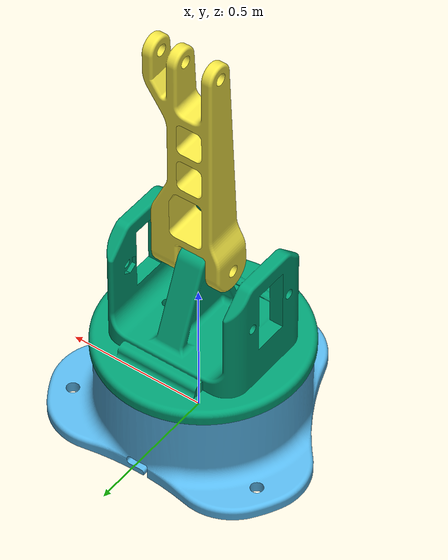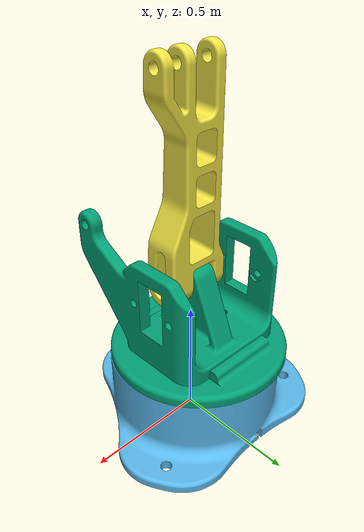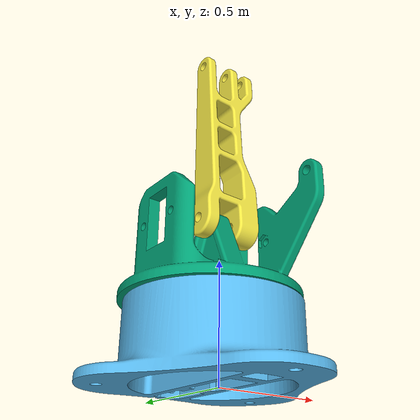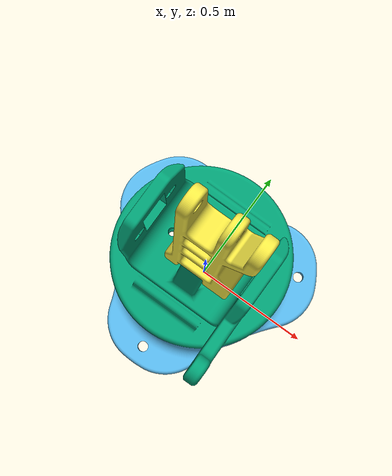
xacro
<?xml version="1.0"?>
<robot xmlns:xacro="http://www.ros.org/wiki/xacro" name="arduinobot">

    <!-- Properties -->
    <xacro:property name="PI" value="3.14159265359" />
    <xacro:property name="effort" value="30.0" />
    <xacro:property name="velocity" value="10.0" />

    <!-- Inertial Macro -->
    <xacro:macro name="default_inertial" params="mass">
        <inertial>
            <origin xyz="0 0 0" rpy="0 0 0"/>
            <mass value="${mass}" />
            <inertia ixx="1.0" ixy="0.0" ixz="0.0"
                     iyy="1.0" iyz="0.0"
                     izz="1.0" />
        </inertial>
    </xacro:macro>

    <!--        LINKS           -->

    <link name="world"/>

    <!-- BASE LINK -->
    <link name="base_link">
        <xacro:default_inertial mass="1.0"/>
        <visual>
            <origin rpy="0 0 0" xyz="-0.5 -0.5 0"/>
            <geometry>
                <mesh filename="package://arduinobot_description/meshes/basement.STL"
                      scale="0.01 0.01 0.01"/>
            </geometry>
        </visual>
        <collision>
            <origin rpy="0 0 0" xyz="-0.5 -0.5 0"/>
            <geometry>
                <mesh filename="package://arduinobot_description/meshes/basement.STL"
                      scale="0.01 0.01 0.01"/>
            </geometry>
        </collision>
    </link>

    <!-- BASE PLATE -->
    <link name="base_plate">
        <xacro:default_inertial mass="0.1"/>
        <visual>
            <origin rpy="0 0 0" xyz="-0.39 -0.39 -0.56"/>
            <geometry>
                <mesh filename="package://arduinobot_description/meshes/base_plate.STL"
                      scale="0.01 0.01 0.01"/>
            </geometry>
        </visual>
        <collision>
            <origin rpy="0 0 0" xyz="-0.39 -0.39 -0.56"/>
            <geometry>
                <mesh filename="package://arduinobot_description/meshes/base_plate.STL"
                      scale="0.01 0.01 0.01"/>
            </geometry>
        </collision>
    </link>

    <!-- FORWARD DRIVE ARM -->
    <link name="forward_drive_arm">
        <xacro:default_inertial mass="0.1"/>
        <visual>
            <origin rpy="0 -${PI/2} ${PI/2}" xyz="0.19 0.06 -0.08"/>
            <geometry>
                <mesh filename="package://arduinobot_description/meshes/forward_drive_arm.STL"
                      scale="0.01 0.01 0.01"/>
            </geometry>
        </visual>
        <collision>
            <origin rpy="0 -${PI/2} ${PI/2}" xyz="0.19 0.06 -0.08"/>
            <geometry>
                <mesh filename="package://arduinobot_description/meshes/forward_drive_arm.STL"
                      scale="0.01 0.01 0.01"/>
            </geometry>
        </collision>
    </link>

    <!--        JOINTS          -->

    <!-- FIX WORLD TO BASE_LINK -->
    <joint name="virtual_joint" type="fixed">
        <parent link="world"/>
        <child link="base_link"/>
        <origin xyz="0 0 0" rpy="0 0 0"/>
    </joint>

    <!-- JOINT 1: base_link → base_plate -->
    <joint name="joint_1" type="revolute">
        <parent link="base_link"/>
        <child link="base_plate"/>
        <origin xyz="0 0 0.307"/>
        <axis xyz="0 0 1"/>
        <limit lower="-${PI/2}" upper="${PI/2}"
               effort="${effort}" velocity="${velocity}"/>
    </joint>

    <!-- JOINT 2: base_plate → forward_drive_arm -->
    <joint name="joint_2" type="revolute">
        <parent link="base_plate"/>
        <child link="forward_drive_arm"/>
        <origin xyz="-0.02 0 0.35"/>
        <axis xyz="1 0 0"/>
        <limit lower="-${PI/2}" upper="${PI/2}"
               effort="${effort}" velocity="${velocity}"/>
    </joint>

</robot>
